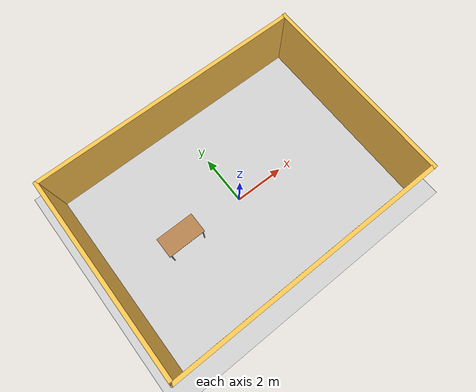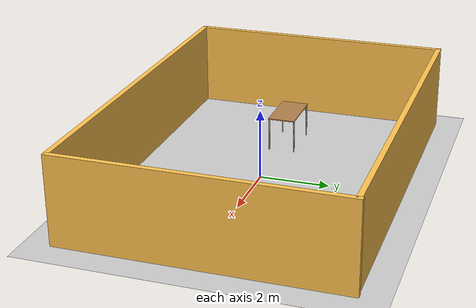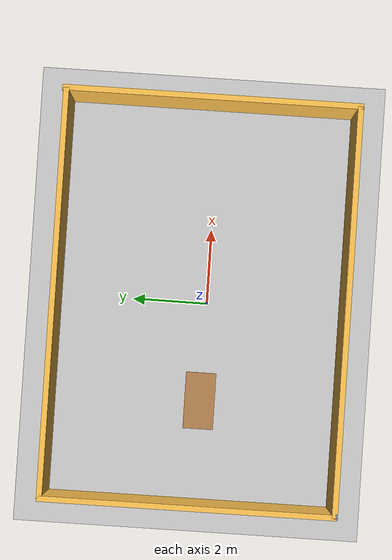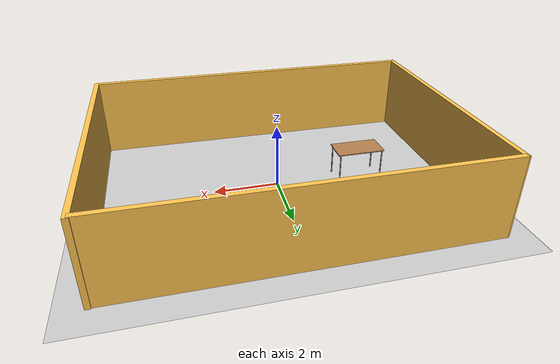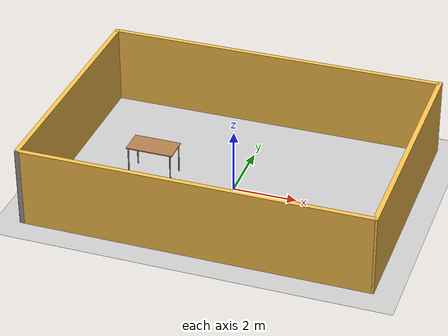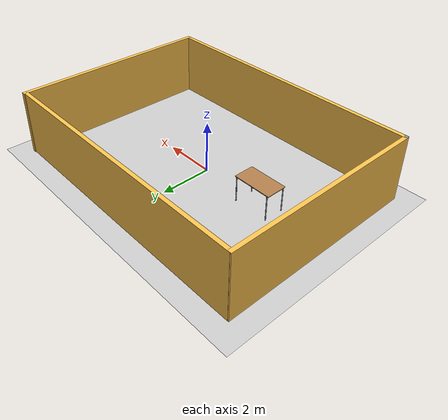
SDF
<sdf version="1.7">
 <world name="default">
  <light name="sun" type="directional">
   <pose>0 0 10 0 -0 0</pose>
   <diffuse>0.8 0.8 0.8 1</diffuse>
   <specular>0.2 0.2 0.2 1</specular>
   <attenuation>
    <range>1000</range>
    <constant>0.9</constant>
    <linear>0.01</linear>
    <quadratic>0.001</quadratic>
   </attenuation>
   <direction>-0.5 0.1 -0.9</direction>
   <spot><inner_angle>0</inner_angle><outer_angle>0</outer_angle><falloff>0</falloff></spot>
  </light>
  <model name="ground_plane">
   <static>1</static>
   <link name="link">
    <collision name="collision">
     <geometry><plane><normal>0 0 1</normal><size>100 100</size></plane></geometry>
     <surface>
      <contact><collide_bitmask>65535</collide_bitmask></contact>
      <friction><ode><mu>100</mu><mu2>50</mu2></ode></friction>
     </surface>
    </collision>
    <visual name="visual">
     <cast_shadows>0</cast_shadows>
     <geometry><plane><normal>0 0 1</normal><size>100 100</size></plane></geometry>
     <material>
      <script><uri>file://media/materials/scripts/gazebo.material</uri><name>Gazebo/Grey</name></script>
     </material>
    </visual>
   </link>
  </model>
  <gravity>0 0 -9.8</gravity>
  <magnetic_field>6e-06 2.3e-05 -4.2e-05</magnetic_field>
  <atmosphere type="adiabatic"/>
  <physics type="ode">
   <max_step_size>0.001</max_step_size>
   <real_time_factor>1</real_time_factor>
   <real_time_update_rate>1000</real_time_update_rate>
  </physics>
  <scene><ambient>0.4 0.4 0.4 1</ambient><background>0.7 0.7 0.7 1</background><shadows>1</shadows></scene>
  <spherical_coordinates>
   <surface_model>EARTH_WGS84</surface_model>
   <latitude_deg>0</latitude_deg>
   <longitude_deg>0</longitude_deg>
   <elevation>0</elevation>
   <heading_deg>0</heading_deg>
  </spherical_coordinates>
  <model name="cardboard_box_0">
   <pose>3.96847 0.977565 -2.12255e+08 0 -0 0</pose>
   <link name="link63">
    <pose>3.96847 0.977565 0.149 0 -0 0</pose>
    <inertial>
     <inertia><ixx>1</ixx><ixy>0</ixy><ixz>0</ixz><iyy>1</iyy><iyz>0</iyz><izz>1</izz></inertia>
     <mass>1</mass>
    </inertial>
    <velocity>0 0 0 0 -0 0</velocity>
    <acceleration>0 -1.9e-05 0 0.000128 2e-06 0</acceleration>
    <wrench>1e-06 -3.8e-05 1e-06 0 -0 0</wrench>
   </link>
   <scale>1 1 1</scale>
  </model>
  <model name="cardboard_box_1">
   <pose>0.006438 -3.96264 -2.12255e+08 0 -0 0</pose>
   <link name="link64">
    <pose>0.006438 -3.96264 0.149 0 -0 0</pose>
    <inertial>
     <inertia><ixx>1</ixx><ixy>0</ixy><ixz>0</ixz><iyy>1</iyy><iyz>0</iyz><izz>1</izz></inertia>
     <mass>1</mass>
    </inertial>
    <velocity>0 0 0 0 -0 0</velocity>
    <acceleration>0 1.9e-05 0 -0.000128 -2e-06 0</acceleration>
    <wrench>-1e-06 3.8e-05 -1e-06 0 -0 0</wrench>
   </link>
   <scale>1 1 1</scale>
  </model>
  <model name="cardboard_box_2">
   <pose>-4.88373 2.96722 -2.12255e+08 0 -0 0</pose>
   <link name="link65">
    <pose>-4.88373 2.96722 0.149 0 -0 0</pose>
    <inertial>
     <inertia><ixx>1</ixx><ixy>0</ixy><ixz>0</ixz><iyy>1</iyy><iyz>0</iyz><izz>1</izz></inertia>
     <mass>1</mass>
    </inertial>
    <velocity>0 0 0 0 -0 0</velocity>
    <acceleration>0 -1.9e-05 0 0.000128 2e-06 0</acceleration>
    <wrench>1e-06 -3.8e-05 1e-06 0 -0 0</wrench>
   </link>
   <scale>1 1 1</scale>
  </model>
  <model name="cardboard_box_3">
   <pose>-0.0158 3.98725 -2.12255e+08 2e-06 -2e-06 -0</pose>
   <link name="link66">
    <pose>-0.0158 3.98725 0.14951 2e-06 -2e-06 -0</pose>
    <inertial>
     <inertia><ixx>1</ixx><ixy>0</ixy><ixz>0</ixz><iyy>1</iyy><iyz>0</iyz><izz>1</izz></inertia>
     <mass>1</mass>
    </inertial>
    <velocity>0 0 0 0 -0 0</velocity>
    <acceleration>0 1.1e-05 0 -7.2e-05 1e-06 0</acceleration>
    <wrench>0 2.2e-05 0 0 -0 0</wrench>
   </link>
   <scale>1 1 1</scale>
  </model>
  <audio><device>default</device></audio>
  <model name="RRC4">
   <link name="Wall_0">
    <pose>-7.52045 -4.14704 0 0 -0 1.5708</pose>
    <inertial>
     <inertia><ixx>0</ixx><ixy>0</ixy><ixz>0</ixz><iyy>0</iyy><iyz>0</iyz><izz>0</izz></inertia>
     <mass>0</mass>
    </inertial>
    <visual name="Wall_0_Visual">
     <pose>0 0 1.25 0 -0 0</pose>
     <geometry><box><size>7.78779 0.15 2.5</size></box></geometry>
     <material>
      <script><uri>file://media/materials/scripts/gazebo.material</uri><name>Gazebo/Grey</name></script>
      <ambient>1 0.764706 0.305882 1</ambient>
      <shader type="pixel"/>
     </material>
     <meta><layer>0</layer></meta>
    </visual>
    <collision name="Wall_0_Collision">
     <pose>0 0 1.25 0 -0 0</pose>
     <geometry><box><size>7.78779 0.15 2.5</size></box></geometry>
     <surface>
      <friction>
       <ode><mu>1</mu><mu2>1</mu2><fdir1>0 0 0</fdir1><slip1>0</slip1><slip2>0</slip2></ode>
       <torsional>
        <coefficient>1</coefficient>
        <patch_radius>0</patch_radius>
        <surface_radius>0</surface_radius>
        <use_patch_radius>1</use_patch_radius>
        <ode><slip>0</slip></ode>
       </torsional>
      </friction>
      <bounce><restitution_coefficient>0</restitution_coefficient><threshold>1e+06</threshold></bounce>
      <contact>
       <collide_without_contact>0</collide_without_contact>
       <collide_without_contact_bitmask>1</collide_without_contact_bitmask>
       <collide_bitmask>1</collide_bitmask>
       <ode>
        <soft_cfm>0</soft_cfm>
        <soft_erp>0.2</soft_erp>
        <kp>1e+13</kp>
        <kd>1</kd>
        <max_vel>0.01</max_vel>
        <min_depth>0</min_depth>
       </ode>
       <bullet>
        <split_impulse>1</split_impulse>
        <split_impulse_penetration_threshold>-0.01</split_impulse_penetration_threshold>
        <soft_cfm>0</soft_cfm>
        <soft_erp>0.2</soft_erp>
        <kp>1e+13</kp>
        <kd>1</kd>
       </bullet>
      </contact>
     </surface>
    </collision>
   </link>
   <link name="Wall_1">
    <pose>-2.18528 -0.320606 0 0 -0 0</pose>
    <inertial>
     <inertia><ixx>0</ixx><ixy>0</ixy><ixz>0</ixz><iyy>0</iyy><iyz>0</iyz><izz>0</izz></inertia>
     <mass>0</mass>
    </inertial>
    <visual name="Wall_1_Visual">
     <pose>0 0 1.25 0 -0 0</pose>
     <geometry><box><size>10.7249 0.15 2.5</size></box></geometry>
     <material>
      <script><uri>file://media/materials/scripts/gazebo.material</uri><name>Gazebo/Grey</name></script>
      <ambient>1 0.764706 0.305882 1</ambient>
      <shader type="pixel"/>
     </material>
     <meta><layer>0</layer></meta>
    </visual>
    <collision name="Wall_1_Collision">
     <pose>0 0 1.25 0 -0 0</pose>
     <geometry><box><size>10.7249 0.15 2.5</size></box></geometry>
     <surface>
      <friction>
       <ode><mu>1</mu><mu2>1</mu2><fdir1>0 0 0</fdir1><slip1>0</slip1><slip2>0</slip2></ode>
       <torsional>
        <coefficient>1</coefficient>
        <patch_radius>0</patch_radius>
        <surface_radius>0</surface_radius>
        <use_patch_radius>1</use_patch_radius>
        <ode><slip>0</slip></ode>
       </torsional>
      </friction>
      <bounce><restitution_coefficient>0</restitution_coefficient><threshold>1e+06</threshold></bounce>
      <contact>
       <collide_without_contact>0</collide_without_contact>
       <collide_without_contact_bitmask>1</collide_without_contact_bitmask>
       <collide_bitmask>1</collide_bitmask>
       <ode>
        <soft_cfm>0</soft_cfm>
        <soft_erp>0.2</soft_erp>
        <kp>1e+13</kp>
        <kd>1</kd>
        <max_vel>0.01</max_vel>
        <min_depth>0</min_depth>
       </ode>
       <bullet>
        <split_impulse>1</split_impulse>
        <split_impulse_penetration_threshold>-0.01</split_impulse_penetration_threshold>
        <soft_cfm>0</soft_cfm>
        <soft_erp>0.2</soft_erp>
        <kp>1e+13</kp>
        <kd>1</kd>
       </bullet>
      </contact>
     </surface>
    </collision>
   </link>
   <link name="Wall_2">
    <pose>3.18117 -4.14297 0 0 0 -1.5708</pose>
    <inertial>
     <inertia><ixx>0</ixx><ixy>0</ixy><ixz>0</ixz><iyy>0</iyy><iyz>0</iyz><izz>0</izz></inertia>
     <mass>0</mass>
    </inertial>
    <visual name="Wall_2_Visual">
     <pose>0 0 1.25 0 -0 0</pose>
     <geometry><box><size>7.84893 0.15 2.5</size></box></geometry>
     <material>
      <script><uri>file://media/materials/scripts/gazebo.material</uri><name>Gazebo/Grey</name></script>
      <ambient>1 0.764706 0.305882 1</ambient>
      <shader type="pixel"/>
     </material>
     <meta><layer>0</layer></meta>
    </visual>
    <collision name="Wall_2_Collision">
     <pose>0 0 1.25 0 -0 0</pose>
     <geometry><box><size>7.84893 0.15 2.5</size></box></geometry>
     <surface>
      <friction>
       <ode><mu>1</mu><mu2>1</mu2><fdir1>0 0 0</fdir1><slip1>0</slip1><slip2>0</slip2></ode>
       <torsional>
        <coefficient>1</coefficient>
        <patch_radius>0</patch_radius>
        <surface_radius>0</surface_radius>
        <use_patch_radius>1</use_patch_radius>
        <ode><slip>0</slip></ode>
       </torsional>
      </friction>
      <bounce><restitution_coefficient>0</restitution_coefficient><threshold>1e+06</threshold></bounce>
      <contact>
       <collide_without_contact>0</collide_without_contact>
       <collide_without_contact_bitmask>1</collide_without_contact_bitmask>
       <collide_bitmask>1</collide_bitmask>
       <ode>
        <soft_cfm>0</soft_cfm>
        <soft_erp>0.2</soft_erp>
        <kp>1e+13</kp>
        <kd>1</kd>
        <max_vel>0.01</max_vel>
        <min_depth>0</min_depth>
       </ode>
       <bullet>
        <split_impulse>1</split_impulse>
        <split_impulse_penetration_threshold>-0.01</split_impulse_penetration_threshold>
        <soft_cfm>0</soft_cfm>
        <soft_erp>0.2</soft_erp>
        <kp>1e+13</kp>
        <kd>1</kd>
       </bullet>
      </contact>
     </surface>
    </collision>
   </link>
   <link name="Wall_3">
    <pose>-2.17773 -7.99999 0 0 -0 3.14159</pose>
    <inertial>
     <inertia><ixx>0</ixx><ixy>0</ixy><ixz>0</ixz><iyy>0</iyy><iyz>0</iyz><izz>0</izz></inertia>
     <mass>0</mass>
    </inertial>
    <visual name="Wall_3_Visual">
     <pose>0 0 1.25 0 -0 0</pose>
     <geometry><box><size>10.7153 0.15 2.5</size></box></geometry>
     <material>
      <script><uri>file://media/materials/scripts/gazebo.material</uri><name>Gazebo/Grey</name></script>
      <ambient>1 0.764706 0.305882 1</ambient>
      <shader type="pixel"/>
     </material>
     <meta><layer>0</layer></meta>
    </visual>
    <collision name="Wall_3_Collision">
     <pose>0 0 1.25 0 -0 0</pose>
     <geometry><box><size>10.7153 0.15 2.5</size></box></geometry>
     <surface>
      <friction>
       <ode><mu>1</mu><mu2>1</mu2><fdir1>0 0 0</fdir1><slip1>0</slip1><slip2>0</slip2></ode>
       <torsional>
        <coefficient>1</coefficient>
        <patch_radius>0</patch_radius>
        <surface_radius>0</surface_radius>
        <use_patch_radius>1</use_patch_radius>
        <ode><slip>0</slip></ode>
       </torsional>
      </friction>
      <bounce><restitution_coefficient>0</restitution_coefficient><threshold>1e+06</threshold></bounce>
      <contact>
       <collide_without_contact>0</collide_without_contact>
       <collide_without_contact_bitmask>1</collide_without_contact_bitmask>
       <collide_bitmask>1</collide_bitmask>
       <ode>
        <soft_cfm>0</soft_cfm>
        <soft_erp>0.2</soft_erp>
        <kp>1e+13</kp>
        <kd>1</kd>
        <max_vel>0.01</max_vel>
        <min_depth>0</min_depth>
       </ode>
       <bullet>
        <split_impulse>1</split_impulse>
        <split_impulse_penetration_threshold>-0.01</split_impulse_penetration_threshold>
        <soft_cfm>0</soft_cfm>
        <soft_erp>0.2</soft_erp>
        <kp>1e+13</kp>
        <kd>1</kd>
       </bullet>
      </contact>
     </surface>
    </collision>
   </link>
   <link name="Wall_4">
    <pose>-7.5 -8 0 0 -0 0</pose>
    <visual name="Wall_4_Visual">
     <pose>0 0 1.25 0 -0 0</pose>
     <geometry><box><size>0.15 0.15 2.5</size></box></geometry>
     <material>
      <script><uri>file://media/materials/scripts/gazebo.material</uri><name>Gazebo/Grey</name></script>
      <ambient>1 1 1 1</ambient>
      <shader type="pixel"/>
     </material>
     <meta><layer>0</layer></meta>
    </visual>
    <collision name="Wall_4_Collision">
     <pose>0 0 1.25 0 -0 0</pose>
     <geometry><box><size>0.15 0.15 2.5</size></box></geometry>
     <surface>
      <friction>
       <ode><mu>1</mu><mu2>1</mu2><fdir1>0 0 0</fdir1><slip1>0</slip1><slip2>0</slip2></ode>
       <torsional>
        <coefficient>1</coefficient>
        <patch_radius>0</patch_radius>
        <surface_radius>0</surface_radius>
        <use_patch_radius>1</use_patch_radius>
        <ode><slip>0</slip></ode>
       </torsional>
      </friction>
      <bounce><restitution_coefficient>0</restitution_coefficient><threshold>1e+06</threshold></bounce>
      <contact>
       <collide_without_contact>0</collide_without_contact>
       <collide_without_contact_bitmask>1</collide_without_contact_bitmask>
       <collide_bitmask>1</collide_bitmask>
       <ode>
        <soft_cfm>0</soft_cfm>
        <soft_erp>0.2</soft_erp>
        <kp>1e+13</kp>
        <kd>1</kd>
        <max_vel>0.01</max_vel>
        <min_depth>0</min_depth>
       </ode>
       <bullet>
        <split_impulse>1</split_impulse>
        <split_impulse_penetration_threshold>-0.01</split_impulse_penetration_threshold>
        <soft_cfm>0</soft_cfm>
        <soft_erp>0.2</soft_erp>
        <kp>1e+13</kp>
        <kd>1</kd>
       </bullet>
      </contact>
     </surface>
    </collision>
   </link>
   <static>1</static>
   <pose>2.15114 4.33699 0 0 -0 0</pose>
  </model>
  <model name="table">
   <static>1</static>
   <link name="link">
    <collision name="surface">
     <pose>0 0 1 0 -0 0</pose>
     <geometry><box><size>1.5 0.8 0.03</size></box></geometry>
     <surface><friction><ode><mu>0.6</mu><mu2>0.6</mu2></ode></friction></surface>
    </collision>
    <visual name="visual1">
     <pose>0 0 1 0 -0 0</pose>
     <geometry><box><size>1.5 0.8 0.03</size></box></geometry>
     <material>
      <script><uri>file://media/materials/scripts/gazebo.material</uri><name>Gazebo/Wood</name></script>
     </material>
    </visual>
    <collision name="front_left_leg">
     <pose>0.68 0.38 0.5 0 -0 0</pose>
     <geometry><cylinder><radius>0.02</radius><length>1</length></cylinder></geometry>
    </collision>
    <visual name="front_left_leg">
     <pose>0.68 0.38 0.5 0 -0 0</pose>
     <geometry><cylinder><radius>0.02</radius><length>1</length></cylinder></geometry>
     <material>
      <script><uri>file://media/materials/scripts/gazebo.material</uri><name>Gazebo/Grey</name></script>
     </material>
    </visual>
    <collision name="front_right_leg">
     <pose>0.68 -0.38 0.5 0 -0 0</pose>
     <geometry><cylinder><radius>0.02</radius><length>1</length></cylinder></geometry>
    </collision>
    <visual name="front_right_leg">
     <pose>0.68 -0.38 0.5 0 -0 0</pose>
     <geometry><cylinder><radius>0.02</radius><length>1</length></cylinder></geometry>
     <material>
      <script><uri>file://media/materials/scripts/gazebo.material</uri><name>Gazebo/Grey</name></script>
     </material>
    </visual>
    <collision name="back_right_leg">
     <pose>-0.68 -0.38 0.5 0 -0 0</pose>
     <geometry><cylinder><radius>0.02</radius><length>1</length></cylinder></geometry>
    </collision>
    <visual name="back_right_leg">
     <pose>-0.68 -0.38 0.5 0 -0 0</pose>
     <geometry><cylinder><radius>0.02</radius><length>1</length></cylinder></geometry>
     <material>
      <script><uri>file://media/materials/scripts/gazebo.material</uri><name>Gazebo/Grey</name></script>
     </material>
    </visual>
    <collision name="back_left_leg">
     <pose>-0.68 0.38 0.5 0 -0 0</pose>
     <geometry><cylinder><radius>0.02</radius><length>1</length></cylinder></geometry>
    </collision>
    <visual name="back_left_leg">
     <pose>-0.68 0.38 0.5 0 -0 0</pose>
     <geometry><cylinder><radius>0.02</radius><length>1</length></cylinder></geometry>
     <material>
      <script><uri>file://media/materials/scripts/gazebo.material</uri><name>Gazebo/Grey</name></script>
     </material>
    </visual>
   </link>
   <pose>-2.61335 0.028377 0 0 -0 0</pose>
  </model>
 </world>
</sdf>
